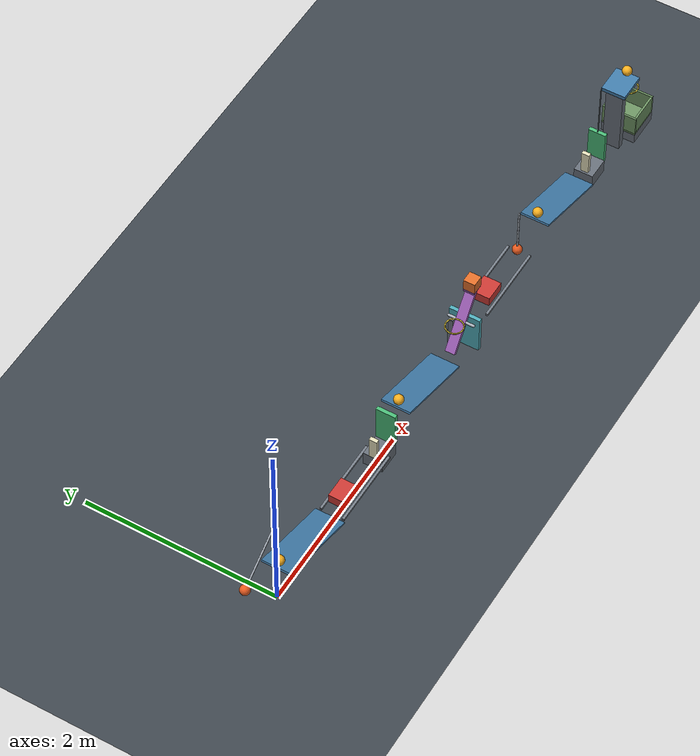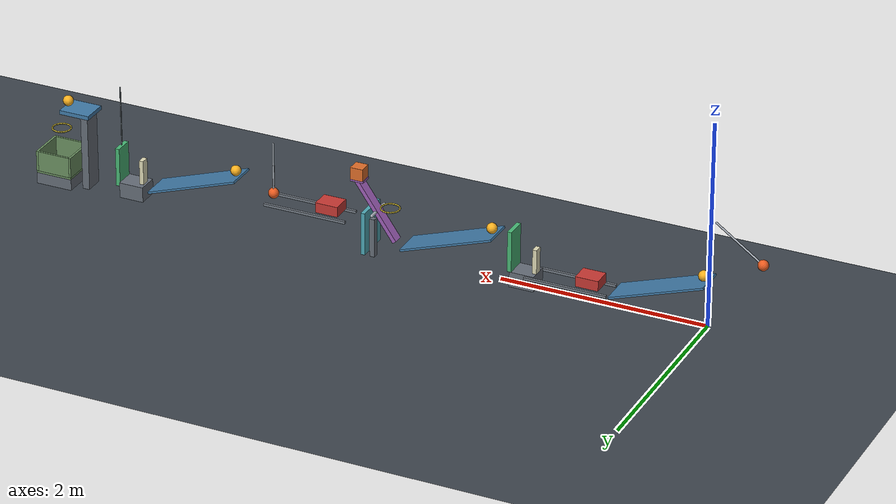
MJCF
<mujoco model="domino_chain_with_specified_ring_obstruction">
  <compiler angle="degree" autolimits="true"/>
  <option timestep="0.002" gravity="0 0 -9.81" integrator="implicitfast" solver="Newton" iterations="100" tolerance="1e-10"/>
  <size nconmax="1000" njmax="4000"/>
  <visual>
    <global azimuth="90" elevation="-18"/>
    <map znear="0.01" zfar="30"/>
    <quality shadowsize="2048"/>
  </visual>

  <worldbody>
    <light name="main_light" pos="3 -3 6" dir="0 0.4 -1" diffuse="0.85 0.85 0.85"/>
    <light name="fill_light" pos="3 3 4" dir="0 -0.4 -1" diffuse="0.45 0.45 0.45"/>
    <camera name="overview" pos="3.1 -7 3.2" xyaxes="1 0 0 0 0.36 0.933"/>
    <geom name="floor" type="plane" size="10 5 0.1" rgba="0.24 0.27 0.30 1" friction="0.68 0.005 0.0001" solref="0.008 0.6901" solimp="0.95 0.99 0.001"/>

    <!-- Pendulum length is measured from its hinge to the bob center. -->
    <body name="pendulum1" pos="-0.045901 0 1.043543" euler="0 55 0">
      <joint name="pendulum1_hinge" type="hinge" axis="0 -1 0" damping="0.04" range="0 135"/>
      <geom name="pendulum1_rod" type="capsule" fromto="0 0 0 0 0 -0.55" size="0.009" mass="0.04" rgba="0.65 0.68 0.72 1" friction="0.68 0.005 0.0001" solref="0.008 0.6901"/>
      <geom name="pendulum1_bob" type="sphere" pos="0 0 -0.55" size="0.05" mass="0.36" rgba="0.90 0.35 0.12 1" friction="0.68 0.005 0.0001" solref="0.008 0.6901"/>
    </body>

    <body name="ball1" pos="0.054099 0 0.493543">
      <freejoint name="ball1_free"/>
      <geom name="ball1_geom" type="sphere" size="0.05" mass="0.20" rgba="0.96 0.68 0.12 1" friction="0.68 0.005 0.0001" solref="0.008 0.6901"/>
    </body>

    <!-- Each ramp has a 0.95 m surface length, 0.30 m width, and low surface edge at z=0.15. -->
    <body name="ramp1" pos="0.445865 0 0.295190" euler="0 19 0">
      <geom name="ramp1_surface" type="box" size="0.475 0.15 0.01" rgba="0.25 0.48 0.66 1" friction="0.68 0.005 0.0001" solref="0.008 0.6901"/>
    </body>

    <body name="cart1" pos="1.128242 0 0.20">
      <joint name="cart1_slide" type="slide" axis="1 0 0" damping="0.20" range="0 0.40" solreflimit="0.004 1"/>
      <geom name="cart1_geom" type="box" size="0.11 0.09 0.05" mass="0.50" rgba="0.78 0.22 0.20 1" friction="0.68 0.005 0.0001" solref="0.008 0.6901"/>
    </body>

    <!-- The slide joint supplies the cart's guide; these rails are visual only. -->
    <body name="cart1_guide" pos="1.328242 0 0.13">
      <geom name="cart1_guide_left" type="box" pos="0 -0.115 0" size="0.40 0.012 0.012" contype="0" conaffinity="0" rgba="0.45 0.48 0.52 1"/>
      <geom name="cart1_guide_right" type="box" pos="0 0.115 0" size="0.40 0.012 0.012" contype="0" conaffinity="0" rgba="0.45 0.48 0.52 1"/>
    </body>

    <body name="domino1" pos="1.658242 0 0.27">
      <freejoint name="domino1_free"/>
      <geom name="domino1_geom" type="box" size="0.02 0.04 0.12" mass="0.25" rgba="0.88 0.86 0.72 1" friction="0.68 0.005 0.0001" solref="0.008 0.6901"/>
    </body>

    <body name="domino1_support" pos="1.758242 0 0.075">
      <geom name="domino1_support_geom" type="box" size="0.12 0.10 0.075" rgba="0.40 0.43 0.47 1" friction="0.68 0.005 0.0001" solref="0.008 0.6901"/>
    </body>

    <body name="flap1" pos="1.878242 0 0.15">
      <joint name="flap1_hinge" type="hinge" axis="0 1 0" damping="0.04" range="0 65" solreflimit="0.004 1"/>
      <geom name="flap1_panel" type="box" pos="0 0 0.20" size="0.02 0.10 0.20" mass="0.30" rgba="0.28 0.72 0.46 1" friction="0.68 0.005 0.0001" solref="0.008 0.6901"/>
    </body>

    <body name="ball2" pos="2.094099 0 0.493543">
      <freejoint name="ball2_free"/>
      <geom name="ball2_geom" type="sphere" size="0.05" mass="0.20" rgba="0.96 0.68 0.12 1" friction="0.68 0.005 0.0001" solref="0.008 0.6901"/>
    </body>

    <body name="ramp2" pos="2.485865 0 0.295190" euler="0 19 0">
      <geom name="ramp2_surface" type="box" size="0.475 0.15 0.01" rgba="0.25 0.48 0.66 1" friction="0.68 0.005 0.0001" solref="0.008 0.6901"/>
    </body>

    <!-- An inclined starting beam provides height for the downstream ring and door. -->
    <!-- The small end pad is part of the 0.55 kg seesaw assembly. -->
    <body name="seesaw1" pos="3.224658 0 0.416225" euler="0 -55 0">
      <joint name="seesaw1_hinge" type="hinge" axis="0 -1 0" damping="0.04" range="0 40" solreflimit="0.004 1"/>
      <geom name="seesaw1_beam" type="box" size="0.325 0.05 0.02" mass="0.52" rgba="0.62 0.37 0.72 1" friction="0.68 0.005 0.0001" solref="0.008 0.6901"/>
      <geom name="seesaw1_end_pad" type="box" pos="0.333192 0 0.005736" euler="0 55 0" size="0.065 0.055 0.01" mass="0.03" rgba="0.62 0.37 0.72 1" friction="0.68 0.005 0.0001" solref="0.008 0.6901"/>
    </body>

    <!-- The post is beside the beam, outside its entire rotational sweep in y. -->
    <body name="seesaw1_support" pos="3.224658 0 0.19">
      <geom name="seesaw1_support_post" type="box" pos="0 0.10 0" size="0.025 0.025 0.19" rgba="0.40 0.43 0.47 1" friction="0.68 0.005 0.0001" solref="0.008 0.6901"/>
      <geom name="seesaw1_support_axle" type="capsule" fromto="0 -0.13 0.226225 0 0.13 0.226225" size="0.014" contype="0" conaffinity="0" rgba="0.65 0.68 0.72 1"/>
    </body>

    <body name="block1" pos="3.411073 0 0.762449">
      <freejoint name="block1_free"/>
      <geom name="block1_geom" type="box" size="0.06 0.06 0.06" mass="0.35" rgba="0.88 0.43 0.16 1" friction="0.68 0.005 0.0001" solref="0.008 0.6901"/>
    </body>

    <!-- Sixteen capsule segments approximate a circular ring with 0.16 m minimum clear diameter. -->
    <!-- Segment centerline radius is 0.088704 m; capsule radius is 0.007 m. -->
    <body name="ring1" pos="3.10 0 0.462449">
      <geom name="ring1_segment00" type="capsule" fromto="0.088704 0 0 0.081951 0.033945 0" size="0.007" rgba="0.85 0.76 0.22 1" friction="0.68 0.005 0.0001" solref="0.008 0.6901"/>
      <geom name="ring1_segment01" type="capsule" fromto="0.081951 0.033945 0 0.062723 0.062723 0" size="0.007" rgba="0.85 0.76 0.22 1" friction="0.68 0.005 0.0001" solref="0.008 0.6901"/>
      <geom name="ring1_segment02" type="capsule" fromto="0.062723 0.062723 0 0.033945 0.081951 0" size="0.007" rgba="0.85 0.76 0.22 1" friction="0.68 0.005 0.0001" solref="0.008 0.6901"/>
      <geom name="ring1_segment03" type="capsule" fromto="0.033945 0.081951 0 0 0.088704 0" size="0.007" rgba="0.85 0.76 0.22 1" friction="0.68 0.005 0.0001" solref="0.008 0.6901"/>
      <geom name="ring1_segment04" type="capsule" fromto="0 0.088704 0 -0.033945 0.081951 0" size="0.007" rgba="0.85 0.76 0.22 1" friction="0.68 0.005 0.0001" solref="0.008 0.6901"/>
      <geom name="ring1_segment05" type="capsule" fromto="-0.033945 0.081951 0 -0.062723 0.062723 0" size="0.007" rgba="0.85 0.76 0.22 1" friction="0.68 0.005 0.0001" solref="0.008 0.6901"/>
      <geom name="ring1_segment06" type="capsule" fromto="-0.062723 0.062723 0 -0.081951 0.033945 0" size="0.007" rgba="0.85 0.76 0.22 1" friction="0.68 0.005 0.0001" solref="0.008 0.6901"/>
      <geom name="ring1_segment07" type="capsule" fromto="-0.081951 0.033945 0 -0.088704 0 0" size="0.007" rgba="0.85 0.76 0.22 1" friction="0.68 0.005 0.0001" solref="0.008 0.6901"/>
      <geom name="ring1_segment08" type="capsule" fromto="-0.088704 0 0 -0.081951 -0.033945 0" size="0.007" rgba="0.85 0.76 0.22 1" friction="0.68 0.005 0.0001" solref="0.008 0.6901"/>
      <geom name="ring1_segment09" type="capsule" fromto="-0.081951 -0.033945 0 -0.062723 -0.062723 0" size="0.007" rgba="0.85 0.76 0.22 1" friction="0.68 0.005 0.0001" solref="0.008 0.6901"/>
      <geom name="ring1_segment10" type="capsule" fromto="-0.062723 -0.062723 0 -0.033945 -0.081951 0" size="0.007" rgba="0.85 0.76 0.22 1" friction="0.68 0.005 0.0001" solref="0.008 0.6901"/>
      <geom name="ring1_segment11" type="capsule" fromto="-0.033945 -0.081951 0 0 -0.088704 0" size="0.007" rgba="0.85 0.76 0.22 1" friction="0.68 0.005 0.0001" solref="0.008 0.6901"/>
      <geom name="ring1_segment12" type="capsule" fromto="0 -0.088704 0 0.033945 -0.081951 0" size="0.007" rgba="0.85 0.76 0.22 1" friction="0.68 0.005 0.0001" solref="0.008 0.6901"/>
      <geom name="ring1_segment13" type="capsule" fromto="0.033945 -0.081951 0 0.062723 -0.062723 0" size="0.007" rgba="0.85 0.76 0.22 1" friction="0.68 0.005 0.0001" solref="0.008 0.6901"/>
      <geom name="ring1_segment14" type="capsule" fromto="0.062723 -0.062723 0 0.081951 -0.033945 0" size="0.007" rgba="0.85 0.76 0.22 1" friction="0.68 0.005 0.0001" solref="0.008 0.6901"/>
      <geom name="ring1_segment15" type="capsule" fromto="0.081951 -0.033945 0 0.088704 0 0" size="0.007" rgba="0.85 0.76 0.22 1" friction="0.68 0.005 0.0001" solref="0.008 0.6901"/>
    </body>

    <!-- Door uses a vertical, bottom-hinged starting configuration. -->
    <body name="door1" pos="3.30 0 0.02">
      <joint name="door1_hinge" type="hinge" axis="0 1 0" damping="0.04" range="0 70" solreflimit="0.004 1"/>
      <geom name="door1_panel" type="box" pos="0 0 0.21" size="0.02 0.16 0.21" mass="0.45" rgba="0.30 0.66 0.71 1" friction="0.68 0.005 0.0001" solref="0.008 0.6901"/>
    </body>

    <body name="cart2" pos="3.70 0 0.35">
      <joint name="cart2_slide" type="slide" axis="1 0 0" damping="0.20" range="0 0.42" solreflimit="0.004 1"/>
      <geom name="cart2_geom" type="box" size="0.11 0.09 0.05" mass="0.50" rgba="0.78 0.22 0.20 1" friction="0.68 0.005 0.0001" solref="0.008 0.6901"/>
    </body>

    <body name="cart2_guide" pos="3.91 0 0.28">
      <geom name="cart2_guide_left" type="box" pos="0 -0.115 0" size="0.41 0.012 0.012" contype="0" conaffinity="0" rgba="0.45 0.48 0.52 1"/>
      <geom name="cart2_guide_right" type="box" pos="0 0.115 0" size="0.41 0.012 0.012" contype="0" conaffinity="0" rgba="0.45 0.48 0.52 1"/>
    </body>

    <body name="pendulum2" pos="4.28 0 0.85">
      <joint name="pendulum2_hinge" type="hinge" axis="0 -1 0" damping="0.04" range="0 38" solreflimit="0.004 1"/>
      <geom name="pendulum2_rod" type="capsule" fromto="0 0 0 0 0 -0.50" size="0.009" mass="0.035" rgba="0.65 0.68 0.72 1" friction="0.68 0.005 0.0001" solref="0.008 0.6901"/>
      <geom name="pendulum2_bob" type="sphere" pos="0 0 -0.50" size="0.05" mass="0.315" rgba="0.90 0.35 0.12 1" friction="0.68 0.005 0.0001" solref="0.008 0.6901"/>
    </body>

    <body name="ball3" pos="4.664099 0 0.493543">
      <freejoint name="ball3_free"/>
      <geom name="ball3_geom" type="sphere" size="0.05" mass="0.20" rgba="0.96 0.68 0.12 1" friction="0.68 0.005 0.0001" solref="0.008 0.6901"/>
    </body>

    <body name="ramp3" pos="5.055865 0 0.295190" euler="0 19 0">
      <geom name="ramp3_surface" type="box" size="0.475 0.15 0.01" rgba="0.25 0.48 0.66 1" friction="0.68 0.005 0.0001" solref="0.008 0.6901"/>
    </body>

    <body name="domino2" pos="5.628242 0 0.27">
      <freejoint name="domino2_free"/>
      <geom name="domino2_geom" type="box" size="0.02 0.04 0.12" mass="0.25" rgba="0.88 0.86 0.72 1" friction="0.68 0.005 0.0001" solref="0.008 0.6901"/>
    </body>

    <!-- Shifted 20 mm left: its right face now only touches the flap's left face. -->
    <body name="domino2_support" pos="5.708242 0 0.075">
      <geom name="domino2_support_geom" type="box" size="0.12 0.10 0.075" rgba="0.40 0.43 0.47 1" friction="0.68 0.005 0.0001" solref="0.008 0.6901"/>
    </body>

    <!-- The panel is mounted to a remote hinge by a lightweight rigid arm. -->
    <body name="flap2" pos="5.848242 0 1.08">
      <joint name="flap2_hinge" type="hinge" axis="0 -1 0" damping="0.04" range="0 60" solreflimit="0.004 1"/>
      <geom name="flap2_arm" type="capsule" fromto="0 0 0 0 0 -0.59" size="0.006" mass="0.02" rgba="0.50 0.55 0.58 1" friction="0.68 0.005 0.0001" solref="0.008 0.6901"/>
      <geom name="flap2_panel" type="box" pos="0 0 -0.78" size="0.02 0.09 0.19" mass="0.26" rgba="0.28 0.72 0.46 1" friction="0.68 0.005 0.0001" solref="0.008 0.6901"/>
    </body>

    <body name="ball4" pos="6.398242 0 0.83">
      <freejoint name="ball4_free"/>
      <geom name="ball4_geom" type="sphere" size="0.05" mass="0.20" rgba="0.96 0.68 0.12 1" friction="0.68 0.005 0.0001" solref="0.008 0.6901"/>
    </body>

    <body name="shelf1" pos="6.273242 0 0.76">
      <geom name="shelf1_surface" type="box" size="0.15 0.125 0.02" rgba="0.25 0.48 0.66 1" friction="0.68 0.005 0.0001" solref="0.008 0.6901"/>
    </body>

    <body name="shelf1_support" pos="6.19 0 0.37">
      <geom name="shelf1_support_post" type="box" size="0.035 0.09 0.37" rgba="0.40 0.43 0.47 1" friction="0.68 0.005 0.0001" solref="0.008 0.6901"/>
    </body>

    <body name="ring2" pos="6.478242 0 0.53">
      <geom name="ring2_segment00" type="capsule" fromto="0.088704 0 0 0.081951 0.033945 0" size="0.007" rgba="0.85 0.76 0.22 1" friction="0.68 0.005 0.0001" solref="0.008 0.6901"/>
      <geom name="ring2_segment01" type="capsule" fromto="0.081951 0.033945 0 0.062723 0.062723 0" size="0.007" rgba="0.85 0.76 0.22 1" friction="0.68 0.005 0.0001" solref="0.008 0.6901"/>
      <geom name="ring2_segment02" type="capsule" fromto="0.062723 0.062723 0 0.033945 0.081951 0" size="0.007" rgba="0.85 0.76 0.22 1" friction="0.68 0.005 0.0001" solref="0.008 0.6901"/>
      <geom name="ring2_segment03" type="capsule" fromto="0.033945 0.081951 0 0 0.088704 0" size="0.007" rgba="0.85 0.76 0.22 1" friction="0.68 0.005 0.0001" solref="0.008 0.6901"/>
      <geom name="ring2_segment04" type="capsule" fromto="0 0.088704 0 -0.033945 0.081951 0" size="0.007" rgba="0.85 0.76 0.22 1" friction="0.68 0.005 0.0001" solref="0.008 0.6901"/>
      <geom name="ring2_segment05" type="capsule" fromto="-0.033945 0.081951 0 -0.062723 0.062723 0" size="0.007" rgba="0.85 0.76 0.22 1" friction="0.68 0.005 0.0001" solref="0.008 0.6901"/>
      <geom name="ring2_segment06" type="capsule" fromto="-0.062723 0.062723 0 -0.081951 0.033945 0" size="0.007" rgba="0.85 0.76 0.22 1" friction="0.68 0.005 0.0001" solref="0.008 0.6901"/>
      <geom name="ring2_segment07" type="capsule" fromto="-0.081951 0.033945 0 -0.088704 0 0" size="0.007" rgba="0.85 0.76 0.22 1" friction="0.68 0.005 0.0001" solref="0.008 0.6901"/>
      <geom name="ring2_segment08" type="capsule" fromto="-0.088704 0 0 -0.081951 -0.033945 0" size="0.007" rgba="0.85 0.76 0.22 1" friction="0.68 0.005 0.0001" solref="0.008 0.6901"/>
      <geom name="ring2_segment09" type="capsule" fromto="-0.081951 -0.033945 0 -0.062723 -0.062723 0" size="0.007" rgba="0.85 0.76 0.22 1" friction="0.68 0.005 0.0001" solref="0.008 0.6901"/>
      <geom name="ring2_segment10" type="capsule" fromto="-0.062723 -0.062723 0 -0.033945 -0.081951 0" size="0.007" rgba="0.85 0.76 0.22 1" friction="0.68 0.005 0.0001" solref="0.008 0.6901"/>
      <geom name="ring2_segment11" type="capsule" fromto="-0.033945 -0.081951 0 0 -0.088704 0" size="0.007" rgba="0.85 0.76 0.22 1" friction="0.68 0.005 0.0001" solref="0.008 0.6901"/>
      <geom name="ring2_segment12" type="capsule" fromto="0 -0.088704 0 0.033945 -0.081951 0" size="0.007" rgba="0.85 0.76 0.22 1" friction="0.68 0.005 0.0001" solref="0.008 0.6901"/>
      <geom name="ring2_segment13" type="capsule" fromto="0.033945 -0.081951 0 0.062723 -0.062723 0" size="0.007" rgba="0.85 0.76 0.22 1" friction="0.68 0.005 0.0001" solref="0.008 0.6901"/>
      <geom name="ring2_segment14" type="capsule" fromto="0.062723 -0.062723 0 0.081951 -0.033945 0" size="0.007" rgba="0.85 0.76 0.22 1" friction="0.68 0.005 0.0001" solref="0.008 0.6901"/>
      <geom name="ring2_segment15" type="capsule" fromto="0.081951 -0.033945 0 0.088704 0 0" size="0.007" rgba="0.85 0.76 0.22 1" friction="0.68 0.005 0.0001" solref="0.008 0.6901"/>
    </body>

    <!-- Interior floor is at z=0.13, so a resting ball center is at z=0.18. -->
    <!-- The clear footprint is 0.32 by 0.32; walls are 0.20 high and 0.02 thick. -->
    <body name="box1" pos="6.478242 0 0.11">
      <geom name="box1_bottom" type="box" pos="0 0 0.01" size="0.18 0.18 0.01" rgba="0.42 0.57 0.38 1" friction="0.68 0.005 0.0001" solref="0.008 0.6901"/>
      <geom name="box1_wall_left" type="box" pos="-0.17 0 0.12" size="0.01 0.18 0.10" rgba="0.42 0.57 0.38 1" friction="0.68 0.005 0.0001" solref="0.008 0.6901"/>
      <geom name="box1_wall_right" type="box" pos="0.17 0 0.12" size="0.01 0.18 0.10" rgba="0.42 0.57 0.38 1" friction="0.68 0.005 0.0001" solref="0.008 0.6901"/>
      <geom name="box1_wall_front" type="box" pos="0 -0.17 0.12" size="0.16 0.01 0.10" rgba="0.42 0.57 0.38 1" friction="0.68 0.005 0.0001" solref="0.008 0.6901"/>
      <geom name="box1_wall_back" type="box" pos="0 0.17 0.12" size="0.16 0.01 0.10" rgba="0.42 0.57 0.38 1" friction="0.68 0.005 0.0001" solref="0.008 0.6901"/>
    </body>

    <body name="box1_support" pos="6.478242 0 0.055">
      <geom name="box1_support_geom" type="box" size="0.18 0.18 0.055" rgba="0.40 0.43 0.47 1" friction="0.68 0.005 0.0001" solref="0.008 0.6901"/>
    </body>
  </worldbody>

  <!-- The constant assist torque is initially opposed by the loaded seesaw. -->
  <!-- It supplies launch energy after an impact moves the beam away from its initial stop. -->
  <actuator>
    <motor name="seesaw1_assist" joint="seesaw1_hinge" gear="1" ctrllimited="true" ctrlrange="0 0.68"/>
  </actuator>

  <!-- Omitted qpos uses the model's initial poses; omitted qvel is identically zero. -->
  <keyframe>
    <key name="start" time="0" ctrl="0.68"/>
  </keyframe>
</mujoco>
